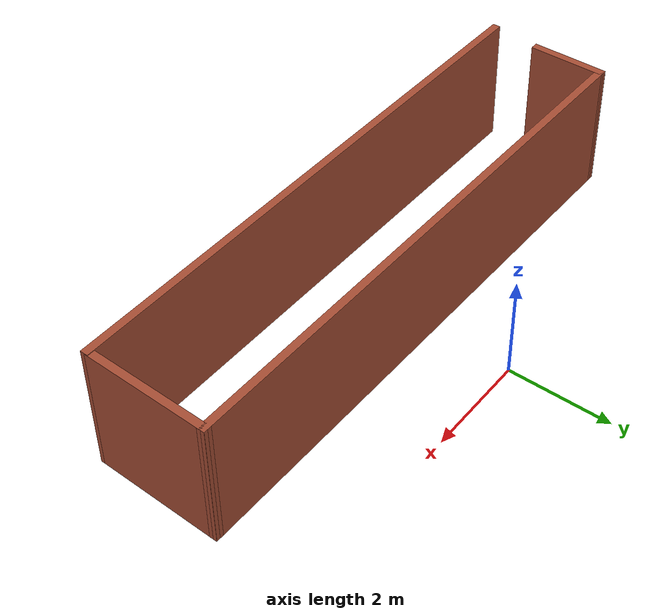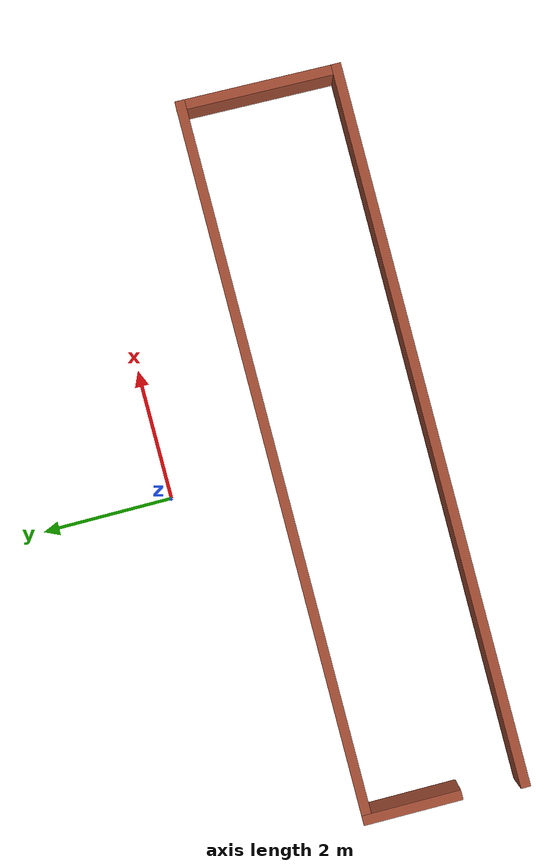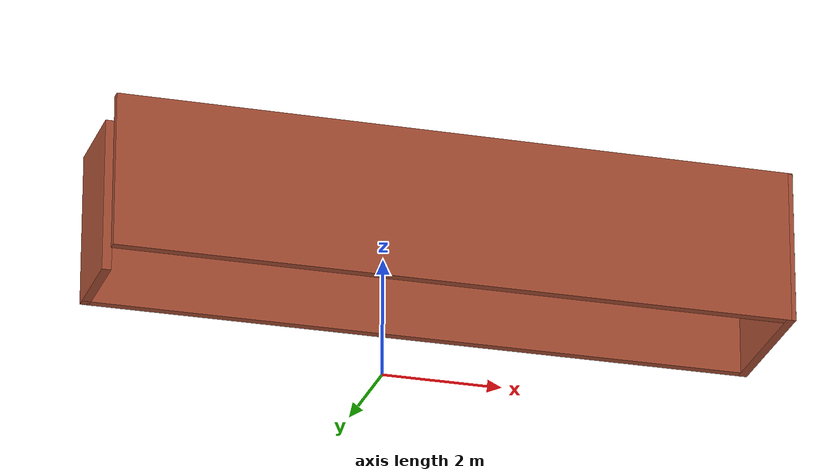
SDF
<?xml version='1.0'?>
<sdf version='1.7'>
  <model name='brick_world'>
    <pose>0.115908 -2.04344 0 0 -0 0</pose>
    <link name='Wall_4'>
      <collision name='Wall_4_Collision'>
        <geometry>
          <box>
            <size>11 0.15 2.515</size>
          </box>
        </geometry>
        <pose>0 0 1.2575 0 -0 0</pose>
      </collision>
      <visual name='Wall_4_Visual'>
        <pose>0 0 1.2575 0 -0 0</pose>
        <geometry>
          <box>
            <size>11 0.15 2.515</size>
          </box>
        </geometry>
        <material>
          <script>
            <uri>file://media/materials/scripts/gazebo.material</uri>
            <name>Gazebo/Bricks</name>
          </script>
          <ambient>1 1 1 1</ambient>
        </material>
        <meta>
          <layer>0</layer>
        </meta>
      </visual>
      <pose>-0.030908 -1.96156 0 0 -0 -0.000922</pose>
    </link>
    <link name='Wall_7'>
      <collision name='Wall_7_Collision'>
        <geometry>
          <box>
            <size>1.51 0.15 2.5</size>
          </box>
        </geometry>
        <pose>0 0 1.25 0 -0 0</pose>
      </collision>
      <visual name='Wall_7_Visual'>
        <pose>0 0 1.25 0 -0 0</pose>
        <geometry>
          <box>
            <size>1.51 0.15 2.5</size>
          </box>
        </geometry>
        <material>
          <script>
            <uri>file://media/materials/scripts/gazebo.material</uri>
            <name>Gazebo/Bricks</name>
          </script>
          <ambient>1 1 1 1</ambient>
        </material>
        <meta>
          <layer>0</layer>
        </meta>
      </visual>
      <pose>-5.39591 -0.266559 0 0 -0 1.5708</pose>
    </link>
    <link name='Wall_8'>
      <collision name='Wall_8_Collision'>
        <geometry>
          <box>
            <size>10.99 0.15 2.5</size>
          </box>
        </geometry>
        <pose>0 0 1.25 0 -0 0</pose>
      </collision>
      <visual name='Wall_8_Visual'>
        <pose>0 0 1.25 0 -0 0</pose>
        <geometry>
          <box>
            <size>10.99 0.15 2.5</size>
          </box>
        </geometry>
        <material>
          <script>
            <uri>file://media/materials/scripts/gazebo.material</uri>
            <name>Gazebo/Bricks</name>
          </script>
          <ambient>1 1 1 1</ambient>
        </material>
        <meta>
          <layer>0</layer>
        </meta>
      </visual>
      <pose>0.034092 0.403441 0 0 -0 -0.001845</pose>
    </link>
    <link name='Wall_9'>
      <collision name='Wall_9_Collision'>
        <geometry>
          <box>
            <size>2.51076 0.15 2.5</size>
          </box>
        </geometry>
        <pose>0 0 1.25 0 -0 0</pose>
      </collision>
      <visual name='Wall_9_Visual'>
        <pose>0 0 1.25 0 -0 0</pose>
        <geometry>
          <box>
            <size>2.51076 0.15 2.5</size>
          </box>
        </geometry>
        <material>
          <script>
            <uri>file://media/materials/scripts/gazebo.material</uri>
            <name>Gazebo/Bricks</name>
          </script>
          <ambient>1 1 1 1</ambient>
        </material>
        <meta>
          <layer>0</layer>
        </meta>
      </visual>
      <pose>5.42409 -0.786559 0 0 -0 -1.59621</pose>
    </link>
    <static>1</static>
  </model>
</sdf>
